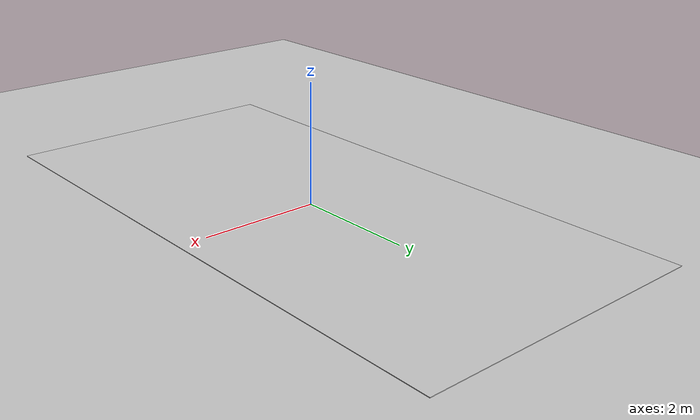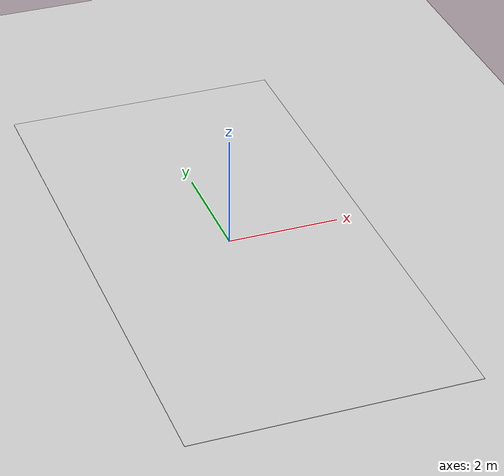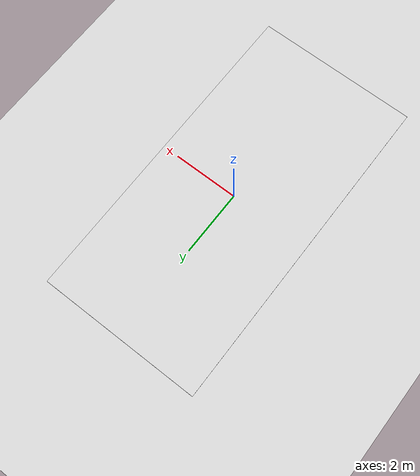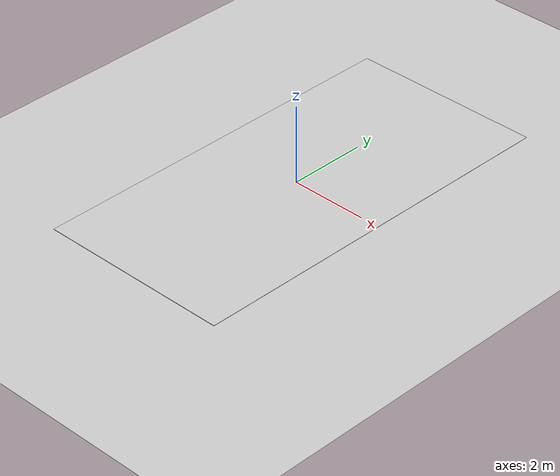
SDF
<?xml version="1.0"?>
<sdf version="1.6">
	<world name="eddie_world">
		<physics name="1ms" type="ignored">
			<max_step_size>0.001</max_step_size>
			<real_time_factor>1.0</real_time_factor>
		</physics>
		<gravity>0 0 -9.81</gravity>

		<plugin
			filename="gz-sim-physics-system"
			name="gz::sim::systems::Physics">
		</plugin>
		<plugin
			filename="gz-sim-user-commands-system"
			name="gz::sim::systems::UserCommands">
		</plugin>
		<plugin
			filename="gz-sim-scene-broadcaster-system"
			name="gz::sim::systems::SceneBroadcaster">
		</plugin>
		<plugin
			filename="gz-sim-sensors-system"
			name="gz::sim::systems::Sensors">
			<render_engine>ogre2</render_engine>
		</plugin>
		<plugin
			filename="gz-sim-imu-system"
			name="gz::sim::systems::Imu">
		</plugin>

		<light type="directional" name="sun">
			<cast_shadows>true</cast_shadows>
			<pose>0 0 10 0 0 0</pose>
			<diffuse>0.8 0.8 0.8 1</diffuse>
			<specular>0.2 0.2 0.2 1</specular>
			<attenuation>
				<range>1000</range>
				<constant>0.9</constant>
				<linear>0.01</linear>
				<quadratic>0.001</quadratic>
			</attenuation>
			<direction>-0.5 0.1 -0.9</direction>
		</light>

		<model name="ground_plane">
			<static>true</static>
			<link name="link">
				<collision name="collision">
					<geometry>
						<plane>
							<normal>0 0 1</normal>
							<size>1000 100</size>
						</plane>
					</geometry>
					<surface>
						<friction>
							<ode>
								<mu>1</mu>
							</ode>
						</friction>
					</surface>
				</collision>
				<visual name="visual">
					<geometry>
						<plane>
							<normal>0 0 1</normal>
							<size>100 100</size>
						</plane>
					</geometry>
					<material>
						<ambient>0.8 0.8 0.8 1</ambient>
						<diffuse>0.8 0.8 0.8 1</diffuse>
						<specular>0.8 0.8 0.8 1</specular>
					</material>
				</visual>
			</link>
		</model>

		<model name="carpet">
			<pose>0 0 0.01 0 0 0</pose>
			<link name="carpet_link">
				<inertial>
					<mass>0.5</mass>
					<inertia>
						<ixx>0.0</ixx>
						<iyy>0.0</iyy>
						<izz>0.0</izz>
					</inertia>
				</inertial>
				<visual name="carpet_visual">
					<geometry>
						<box>
							<size>5 10 0.01</size>
						</box>
					</geometry>
					<material>
						<!-- texture -->
						<pbr>
							<metal>
								<albedo_map>file://eddie_gazebo/meshes/textures/lab_tiles.png</albedo_map>
							</metal>
						</pbr>
						<!-- properties -->
						<ambient>0.8 0.8 0.8 1</ambient>
						<diffuse>0.8 0.8 0.8 1</diffuse>
						<specular>0.8 0.8 0.8 1</specular>
					</material>
				</visual>
				<collision name="carpet_collision">
					<geometry>
						<box>
							<size>5 10 0.01</size>
						</box>
					</geometry>
					<surface>
						<friction>
							<ode>
								<!-- Friction coefficients -->
								<mu>0.6</mu> <!-- Coefficient of friction (static) -->
								<mu2>0.6</mu2> <!-- Coefficient of friction (dynamic) -->
							</ode>
						</friction>
						<bounce>
							<restitution_coefficient>0.1</restitution_coefficient>
						</bounce>
						<contact>
							<collide_without_contact>false</collide_without_contact>
						</contact>
					</surface>
				</collision>
			</link>
		</model>

		<!-- Define scene properties -->
		<scene>
			<shadows>true</shadows>
		</scene>
	</world>
</sdf>
